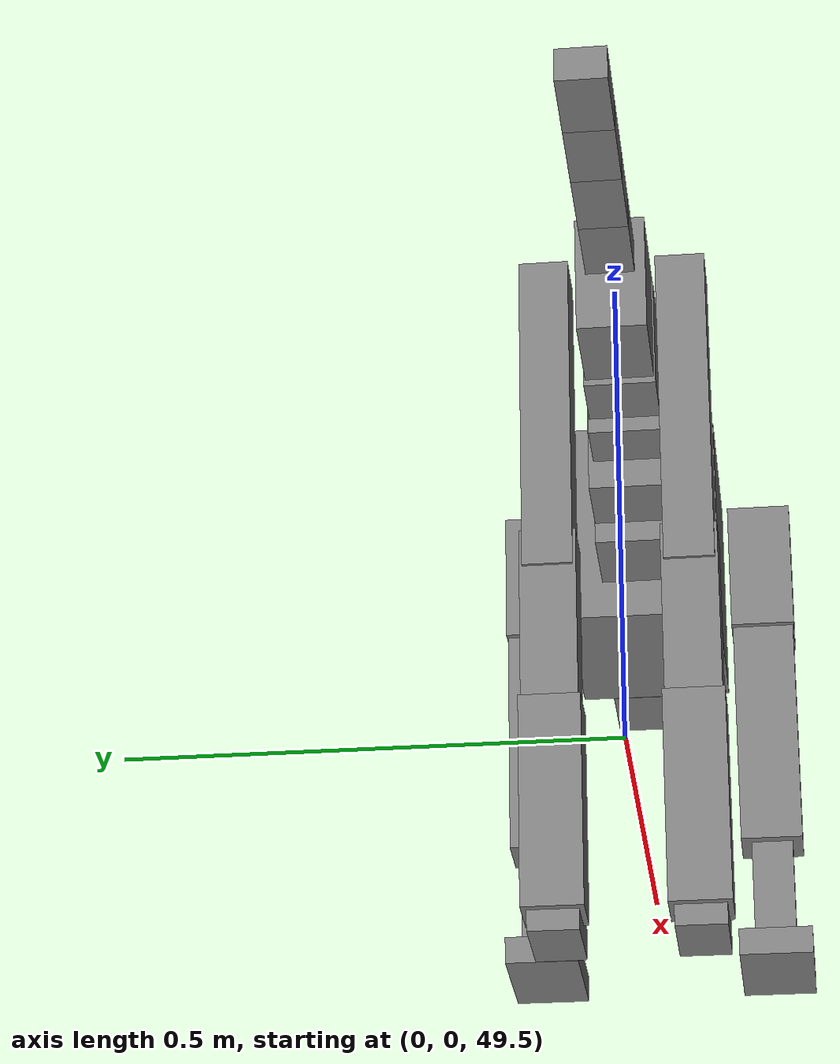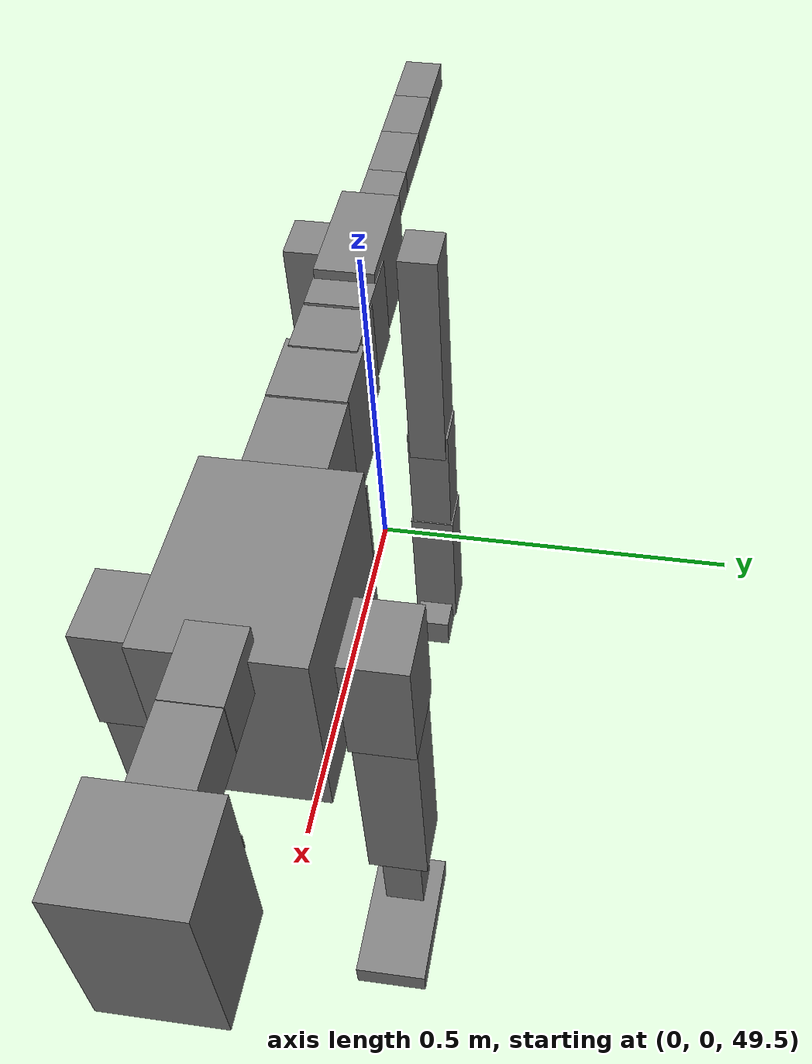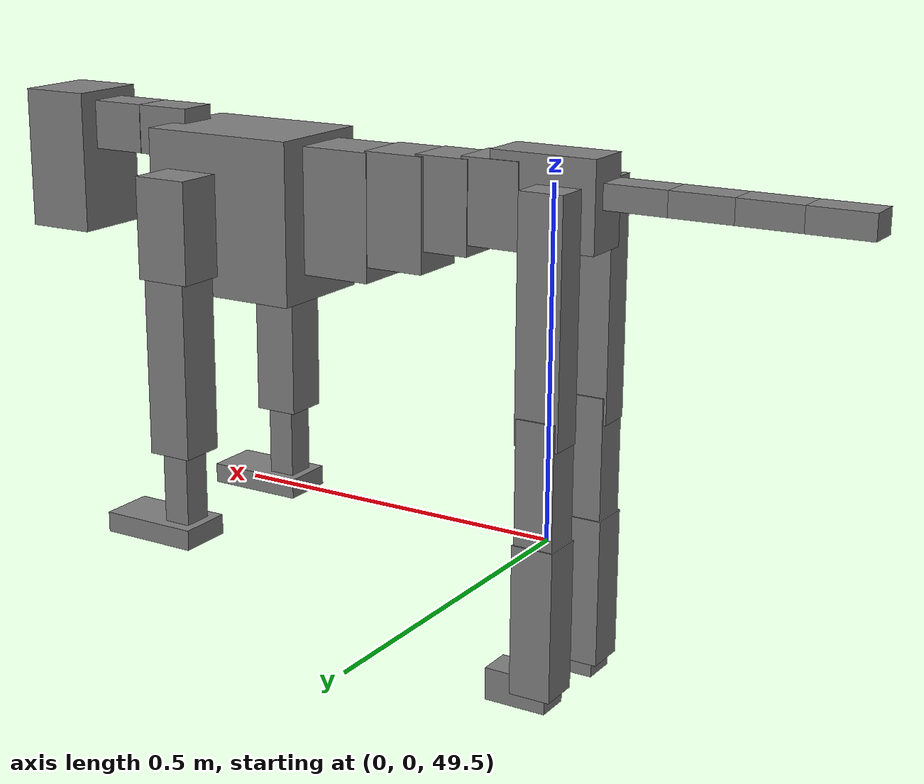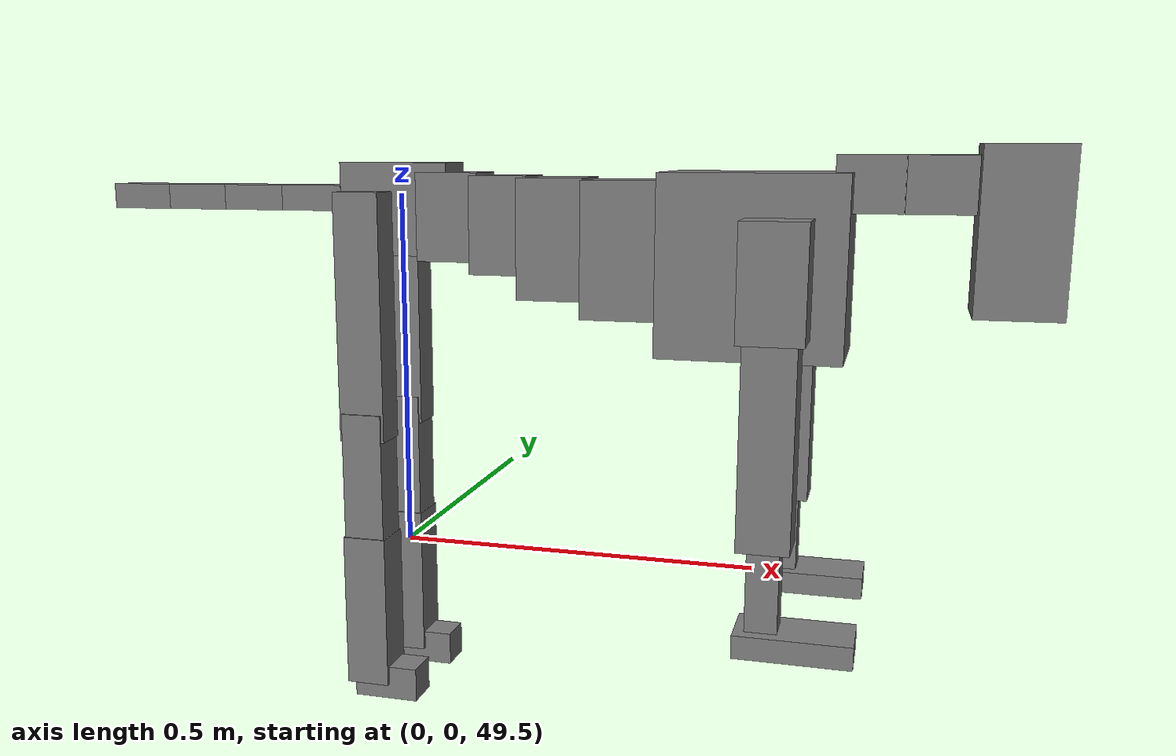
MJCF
<mujoco model="dog">

    <default>
        <joint armature="0.02" stiffness="1" damping="0.2" limited="true"/>
        <geom condim="3" friction="1 0.05 0.05" margin="0.01"/>
        <motor ctrllimited="true" ctrlrange="-1.0 1.0" forcelimited="true" gear="50"/>
    </default>

    <compiler inertiafromgeom="true" angle="radian"/>

    <option timestep="0.016" iterations="50" tolerance="1e-10" solver="Newton" jacobian="dense" cone="pyramidal"/>

    <size nconmax="20000" njmax="60000" nstack="5000000"/>
    <visual>
        <map force="0.1" zfar="30"/>
        <rgba haze="0.15 0.25 0.35 1"/>
        <quality shadowsize="2048"/>
        <global offwidth="800" offheight="800"/>
    </visual>

    <asset>
        <texture type="skybox" builtin="gradient" rgb1="0.3 0.5 0.7" rgb2="0 0 0" width="512" height="512"/>
        <texture name="texplane" type="2d" builtin="checker" rgb1=".2 .3 .4" rgb2=".1 0.15 0.2" width="512" height="512"
                 mark="cross" markrgb=".8 .8 .8"/>
        <texture name="texgeom" type="cube" builtin="flat" mark="cross" width="127" height="1278" rgb1="0.8 0.6 0.4"
                 rgb2="0.8 0.6 0.4" markrgb="1 1 1" random="0.01"/>

        <material name="matplane" reflectance="0.3" texture="texplane" texrepeat="1 1" texuniform="true"/>
        <material name="matgeom" texture="texgeom" texuniform="true" rgba="0.8 0.6 .4 1"/>
    </asset>

    <worldbody>
        <geom name="floor" pos="0 0 0" size="0 0 .25" type="plane" material="matplane" condim="3"/>

        <light directional="false" diffuse=".2 .2 .2" specular="0 0 0" pos="0 0 5" dir="0 0 -1" castshadow="false"/>
        <light mode="targetbodycom" target="torso" directional="false" diffuse=".8 .8 .8" specular="0.3 0.3 0.3"
               pos="0 0 4.0" dir="0 0 -1"/>

        <body name="root" pos="0 0 50">
            <freejoint name="root_1"/>
            <geom type="box" pos="0 0 -0.02" size="0.0774  0.0358  0.063" density="2030"/>

            <body name="spine1" pos="0.054 0 0">
                <joint name="spine1_y" axis="0 1 0" range="0 0.7" limited="true"/>
                <geom type="box" pos="0.02375 0 -0.03" size="0.04375  0.0375  0.05985" density="2030"/>

                <body name="spine2" pos="0.0612 0 0">
                    <joint name="spine2_y" axis="0 1 0" range="-0.15 0.15" limited="true"/>
                    <geom type="box" pos="0.03555  0  -0.04" size="0.04055  0.039  0.06615" density="2030"/>

                    <body name="spine3" pos="0.0730 0 0">
                        <joint name="spine3_y" axis="0 1 0" range="-0.15 0.15" limited="true"/>
                        <geom type="box" pos="0.03555  0  -0.057" size="0.04555  0.0445  0.081" density="2030"/>

                        <body name="spine4" pos="0.0780 0 0">
                            <joint name="spine4_y" axis="0 1 0" range="-0.15 0.15" limited="true"/>
                            <geom type="box" pos="0.05265  0  -0.07" size="0.05265  0.045  0.09135" density="2030"/>

                            <body name="torso" pos="0.1082 0 0">
                                <joint name="torso_y" axis="0 1 0" range="-0.15 0.15" limited="true"/>
                                <geom type="box" pos="0.11925  0  -0.085" size="0.11925  0.085  0.11745"
                                      density="2030"/>

                                <body name="neck1" pos="0.2160  0   0.0180">
                                    <joint name="neck1_y" axis="0 1 0" range="-1.2  -1" limited="true"/>
                                    <geom type="box" pos="0.0423  0  0" size="0.0423  0.03  0.036" density="2325"/>

                                    <body name="neck2" pos="0.0853  0  0">
                                        <joint name="neck2_y" axis="0 1 0" range="0.1  0" limited="true"/>
                                        <geom type="box" pos="0.0423  0  0" size="0.0423  0.03  0.036" density="2325"/>

                                        <body name="head" pos="0.0853  0  0">
                                            <joint name="head_y" axis="0 1 0" range="-0.3  -0.2" limited="true"/>
                                            <geom type="box" pos="0.0531  0  -0.055" size="0.0531  0.06  0.1044"
                                                  density="4030"/>

                                        </body>
                                    </body>
                                </body>

                                <body name="front_shoulder" pos="0.156  0   -0.0480">
                                    <joint name="front_shoulder_y" axis="0 1 0" range="-1 1.5" limited="true"/>
                                    <geom type="box" pos="0 0.13 -0.0473" size="0.0417  0.0356  0.0739" density="1158"/>
                                    <geom type="box" pos="0 -0.13 -0.0473" size="0.0417  0.0356  0.0739"
                                          density="1158"/>

                                    <body name="front_elbow" pos="0  0  -0.0945">
                                        <joint name="front_elbow_y" axis="0 1 0" range="-2 0" limited="true"/>
                                        <geom type="box" pos="0 0.13 -0.1424" size="0.0336  0.0343  0.1424"
                                              density="1081"/>
                                        <geom type="box" pos="0 -0.13 -0.1424" size="0.0336  0.0343  0.1424"
                                              density="1081"/>

                                        <body name="front_wrist" pos="0  0  -0.2848">
                                            <joint name="front_wrist_y" axis="0 1 0" range="-0.2 0" limited="true"/>
                                            <geom type="box" pos="0 0.13 -0.0604" size="0.0206  0.0229  0.0735"
                                                  density="1664"/>
                                            <geom type="box" pos="0 -0.13 -0.0604" size="0.0206  0.0229  0.0735"
                                                  density="1664"/>

                                            <body name="front_finger_end" pos="0  0  -0.1207">
                                                <joint name="front_finger_y" axis="0 1 0" range="-0.4 1"
                                                       limited="true"/>
                                                <geom type="box" pos="0.0407  0.13  -0.0001"
                                                      size="0.0747  0.0407  0.0151" density="1515"/>
                                                <geom type="box" pos="0.0407  -0.13  -0.0001"
                                                      size="0.0747  0.0407  0.0151" density="1515"/>

                                            </body>

                                        </body>
                                    </body>
                                </body>

                            </body>
                        </body>
                    </body>
                </body>
            </body>

            <body name="back_hip" pos="-0.03 0 -0.018">
                <joint name="back_hip_y" axis="0 1 0" range="-1.5 0.3" limited="true"/>
                <geom type="box" pos="0 0.07 -0.1475" size="0.0322  0.0252  0.1703" density="1154"/>
                <geom type="box" pos="0 -0.07 -0.1475" size="0.0322  0.0252  0.1703" density="1154"/>

                <body name="back_knee" pos="0  0  -0.2950">
                    <joint name="back_knee_y" axis="0 1 0" range="0 2.8" limited="true"/>
                    <geom type="box" pos="0 0.07 -0.0862" size="0.0286  0.0282  0.1018" density="1227"/>
                    <geom type="box" pos="0 -0.07 -0.0862" size="0.0286  0.0282  0.1018" density="1227"/>

                    <body name="back_ankle" pos="0  0  -0.1725">
                        <joint name="back_ankle_y" axis="0 1 0" range="-2.2 0" limited="true"/>
                        <geom type="box" pos="0 0.07 -0.0970" size="0.0306  0.0306  0.1083" density="1284"/>
                        <geom type="box" pos="0 -0.07 -0.0970" size="0.0306  0.0306  0.1083" density="1284"/>

                        <body name="back_toe_end" pos="0  0  -0.1941">
                            <joint name="back_toe_y" axis="0 1 0" range="-0.4 1" limited="true"/>
                            <geom type="box" pos="0.0252  0.07  -0.0087" size="0.0462  0.0252  0.0237" density="1515"/>
                            <geom type="box" pos="0.0252  -0.07  -0.0087" size="0.0462  0.0252  0.0237" density="1515"/>

                        </body>
                    </body>
                </body>
            </body>

            <body name="tail1" pos="-0.074 0 -0.006">
                <joint name="tail1_y" axis="0 1 0" range="-0.2 0.2" limited="true"/>
                <geom type="box" pos="-0.0536  0  0" size="0.045  0.025  0.0175" density="1587"/>

                <body name="tail2" pos="-0.09 0 0">
                    <joint name="tail2_y" axis="0 1 0" range="-0.2 0.2" limited="true"/>
                    <geom type="box" pos="-0.0536  0  0" size="0.045  0.025  0.0175" density="1587"/>

                    <body name="tail3" pos="-0.09 0 0">
                        <joint name="tail3_y" axis="0 1 0" range="-0.2 0.2" limited="true"/>
                        <geom type="box" pos="-0.0536  0  0" size="0.045  0.025  0.0175" density="1587"/>

                        <body name="tail4" pos="-0.09 0 0">
                            <joint name="tail4_y" axis="0 1 0" range="-0.2 0.2" limited="true"/>
                            <geom type="box" pos="-0.0536  0  0" size="0.045  0.025  0.0175" density="1587"/>

                        </body>
                    </body>
                </body>
            </body>
        </body>
    </worldbody>

    <actuator>
        <motor joint="spine1_y" forcerange="-150 150     "/>
        <motor joint="spine2_y" forcerange="-150 150     "/>
        <motor joint="spine3_y" forcerange="-150 150     "/>
        <motor joint="spine4_y" forcerange="-150 150     "/>
        <motor joint="torso_y" forcerange="-150 150     "/>
        <motor joint="neck1_y" forcerange="-100 100       "/>
        <motor joint="neck2_y" forcerange="-100 100       "/>
        <motor joint="head_y" forcerange="-150 150       "/>
        <motor joint="front_shoulder_y" forcerange="-167.02 170.33"/>
        <motor joint="front_elbow_y" forcerange="-183.73 165.73"/>
        <motor joint="front_wrist_y" forcerange="-94.44 88.70"/>
        <motor joint="front_finger_y" forcerange="-77.38 99.94"/>
        <motor joint="back_hip_y" forcerange="-207.06 329.46"/>
        <motor joint="back_knee_y" forcerange="-382.49 227.32"/>
        <motor joint="back_angle_y" forcerange="-221.19 168.03"/>
        <motor joint="back_toe_y" forcerange="-58.61 62.92"/>
        <motor joint="tail1_y" forcerange="-50 50     "/>
        <motor joint="tail2_y" forcerange="-50 50     "/>
        <motor joint="tail3_y" forcerange="-50 50     "/>
        <motor joint="tail4_y" forcerange="-50 50     "/>
    </actuator>
</mujoco>
